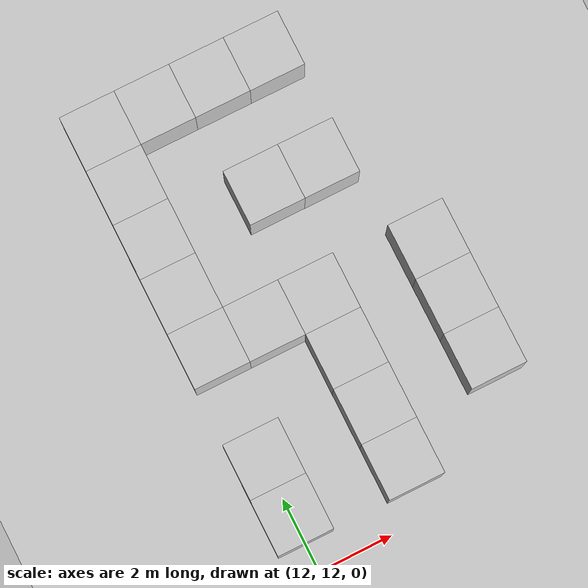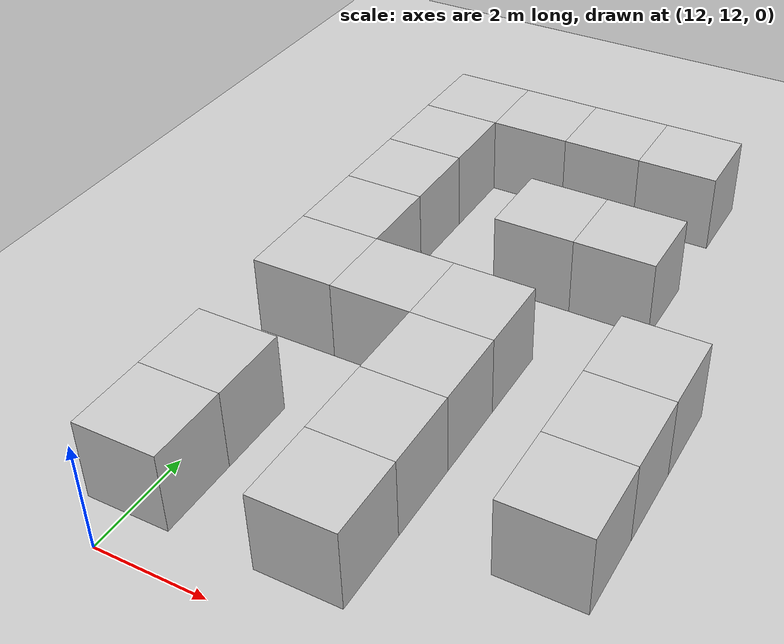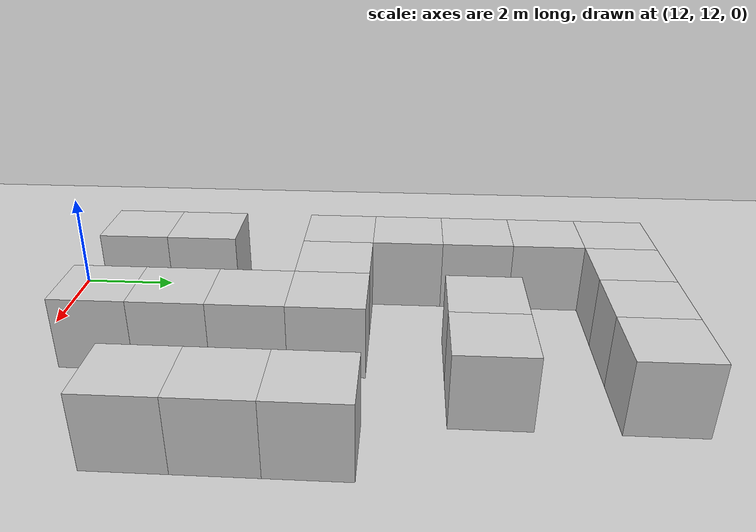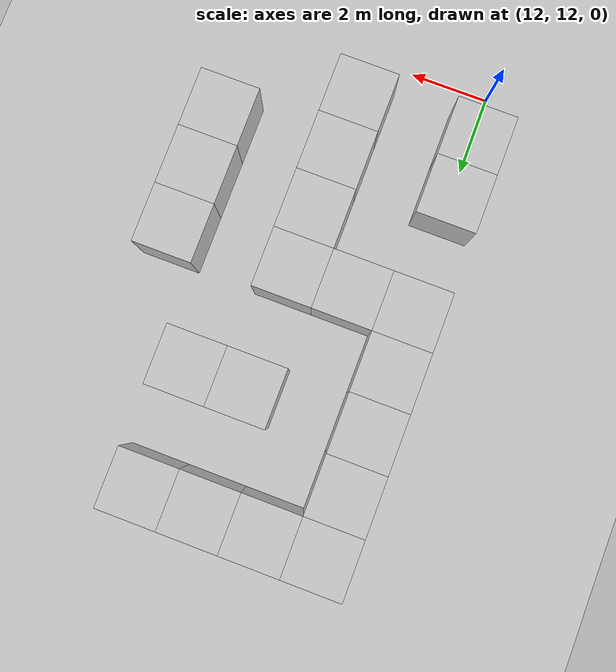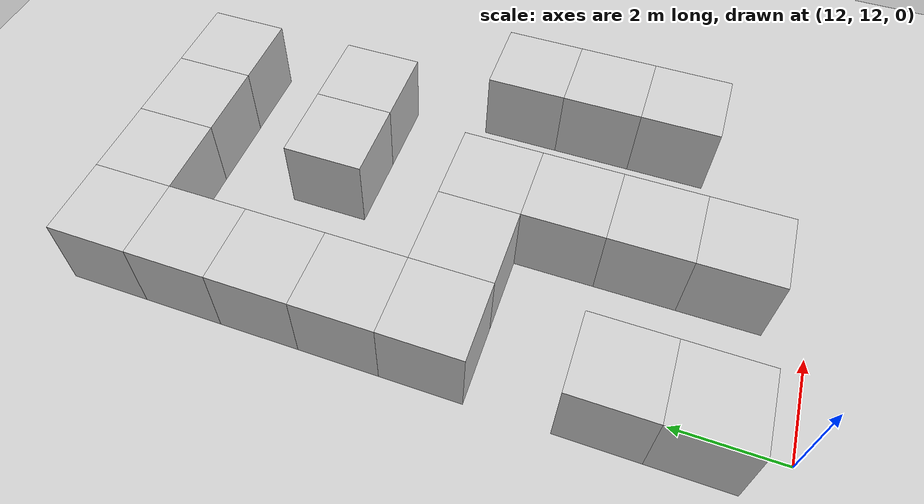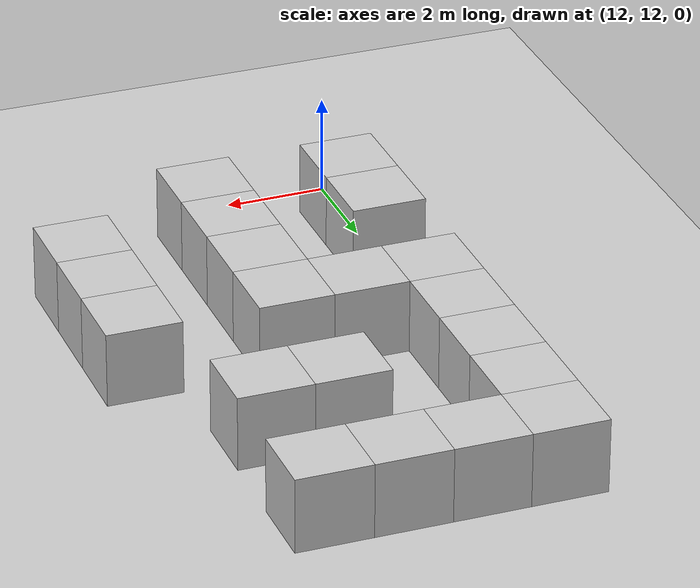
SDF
<sdf version="1.9">
 <world name="maze_world">
  <include><uri>https://fuel.gazebosim.org/1.0/OpenRobotics/models/Sun</uri></include>
  <include><uri>https://fuel.gazebosim.org/1.0/OpenRobotics/models/Ground Plane</uri></include>
  <model name="wall_8_9">
   <static>true</static>
   <pose>12 13.5 0.75 0 0 0</pose>
   <link name="link">
    <collision name="collision"><geometry><box><size>1.5 1.5 1.5</size></box></geometry></collision>
    <visual name="visual">
     <geometry><box><size>1.5 1.5 1.5</size></box></geometry>
     <material>
      <ambient>0.8 0.8 0.8 1</ambient>
      <diffuse>0.8 0.8 0.8 1</diffuse>
      <pbr>
       <metal>
        <albedo_map>file:///home/max/Repos/DHBW-Robotik/maze_runner_ws/src/maze_runner_gazebo/textures/simple_box.png</albedo_map>
        <roughness>0.9</roughness>
       </metal>
      </pbr>
     </material>
    </visual>
   </link>
  </model>
  <model name="wall_10_9">
   <static>true</static>
   <pose>15 13.5 0.75 0 0 0</pose>
   <link name="link">
    <collision name="collision"><geometry><box><size>1.5 1.5 1.5</size></box></geometry></collision>
    <visual name="visual">
     <geometry><box><size>1.5 1.5 1.5</size></box></geometry>
     <material>
      <ambient>0.8 0.8 0.8 1</ambient>
      <diffuse>0.8 0.8 0.8 1</diffuse>
      <pbr>
       <metal>
        <albedo_map>file:///home/max/Repos/DHBW-Robotik/maze_runner_ws/src/maze_runner_gazebo/textures/simple_box.png</albedo_map>
        <roughness>0.9</roughness>
       </metal>
      </pbr>
     </material>
    </visual>
   </link>
  </model>
  <model name="wall_8_10">
   <static>true</static>
   <pose>12 15 0.75 0 0 0</pose>
   <link name="link">
    <collision name="collision"><geometry><box><size>1.5 1.5 1.5</size></box></geometry></collision>
    <visual name="visual">
     <geometry><box><size>1.5 1.5 1.5</size></box></geometry>
     <material>
      <ambient>0.8 0.8 0.8 1</ambient>
      <diffuse>0.8 0.8 0.8 1</diffuse>
      <pbr>
       <metal>
        <albedo_map>file:///home/max/Repos/DHBW-Robotik/maze_runner_ws/src/maze_runner_gazebo/textures/simple_box.png</albedo_map>
        <roughness>0.9</roughness>
       </metal>
      </pbr>
     </material>
    </visual>
   </link>
  </model>
  <model name="wall_10_10">
   <static>true</static>
   <pose>15 15 0.75 0 0 0</pose>
   <link name="link">
    <collision name="collision"><geometry><box><size>1.5 1.5 1.5</size></box></geometry></collision>
    <visual name="visual">
     <geometry><box><size>1.5 1.5 1.5</size></box></geometry>
     <material>
      <ambient>0.8 0.8 0.8 1</ambient>
      <diffuse>0.8 0.8 0.8 1</diffuse>
      <pbr>
       <metal>
        <albedo_map>file:///home/max/Repos/DHBW-Robotik/maze_runner_ws/src/maze_runner_gazebo/textures/simple_box.png</albedo_map>
        <roughness>0.9</roughness>
       </metal>
      </pbr>
     </material>
    </visual>
   </link>
  </model>
  <model name="wall_12_10">
   <static>true</static>
   <pose>18 15 0.75 0 0 0</pose>
   <link name="link">
    <collision name="collision"><geometry><box><size>1.5 1.5 1.5</size></box></geometry></collision>
    <visual name="visual">
     <geometry><box><size>1.5 1.5 1.5</size></box></geometry>
     <material>
      <ambient>0.8 0.8 0.8 1</ambient>
      <diffuse>0.8 0.8 0.8 1</diffuse>
      <pbr>
       <metal>
        <albedo_map>file:///home/max/Repos/DHBW-Robotik/maze_runner_ws/src/maze_runner_gazebo/textures/simple_box.png</albedo_map>
        <roughness>0.9</roughness>
       </metal>
      </pbr>
     </material>
    </visual>
   </link>
  </model>
  <model name="wall_10_11">
   <static>true</static>
   <pose>15 16.5 0.75 0 0 0</pose>
   <link name="link">
    <collision name="collision"><geometry><box><size>1.5 1.5 1.5</size></box></geometry></collision>
    <visual name="visual">
     <geometry><box><size>1.5 1.5 1.5</size></box></geometry>
     <material>
      <ambient>0.8 0.8 0.8 1</ambient>
      <diffuse>0.8 0.8 0.8 1</diffuse>
      <pbr>
       <metal>
        <albedo_map>file:///home/max/Repos/DHBW-Robotik/maze_runner_ws/src/maze_runner_gazebo/textures/simple_box.png</albedo_map>
        <roughness>0.9</roughness>
       </metal>
      </pbr>
     </material>
    </visual>
   </link>
  </model>
  <model name="wall_12_11">
   <static>true</static>
   <pose>18 16.5 0.75 0 0 0</pose>
   <link name="link">
    <collision name="collision"><geometry><box><size>1.5 1.5 1.5</size></box></geometry></collision>
    <visual name="visual">
     <geometry><box><size>1.5 1.5 1.5</size></box></geometry>
     <material>
      <ambient>0.8 0.8 0.8 1</ambient>
      <diffuse>0.8 0.8 0.8 1</diffuse>
      <pbr>
       <metal>
        <albedo_map>file:///home/max/Repos/DHBW-Robotik/maze_runner_ws/src/maze_runner_gazebo/textures/simple_box.png</albedo_map>
        <roughness>0.9</roughness>
       </metal>
      </pbr>
     </material>
    </visual>
   </link>
  </model>
  <model name="wall_8_12">
   <static>true</static>
   <pose>12 18 0.75 0 0 0</pose>
   <link name="link">
    <collision name="collision"><geometry><box><size>1.5 1.5 1.5</size></box></geometry></collision>
    <visual name="visual">
     <geometry><box><size>1.5 1.5 1.5</size></box></geometry>
     <material>
      <ambient>0.8 0.8 0.8 1</ambient>
      <diffuse>0.8 0.8 0.8 1</diffuse>
      <pbr>
       <metal>
        <albedo_map>file:///home/max/Repos/DHBW-Robotik/maze_runner_ws/src/maze_runner_gazebo/textures/simple_box.png</albedo_map>
        <roughness>0.9</roughness>
       </metal>
      </pbr>
     </material>
    </visual>
   </link>
  </model>
  <model name="wall_9_12">
   <static>true</static>
   <pose>13.5 18 0.75 0 0 0</pose>
   <link name="link">
    <collision name="collision"><geometry><box><size>1.5 1.5 1.5</size></box></geometry></collision>
    <visual name="visual">
     <geometry><box><size>1.5 1.5 1.5</size></box></geometry>
     <material>
      <ambient>0.8 0.8 0.8 1</ambient>
      <diffuse>0.8 0.8 0.8 1</diffuse>
      <pbr>
       <metal>
        <albedo_map>file:///home/max/Repos/DHBW-Robotik/maze_runner_ws/src/maze_runner_gazebo/textures/simple_box.png</albedo_map>
        <roughness>0.9</roughness>
       </metal>
      </pbr>
     </material>
    </visual>
   </link>
  </model>
  <model name="wall_10_12">
   <static>true</static>
   <pose>15 18 0.75 0 0 0</pose>
   <link name="link">
    <collision name="collision"><geometry><box><size>1.5 1.5 1.5</size></box></geometry></collision>
    <visual name="visual">
     <geometry><box><size>1.5 1.5 1.5</size></box></geometry>
     <material>
      <ambient>0.8 0.8 0.8 1</ambient>
      <diffuse>0.8 0.8 0.8 1</diffuse>
      <pbr>
       <metal>
        <albedo_map>file:///home/max/Repos/DHBW-Robotik/maze_runner_ws/src/maze_runner_gazebo/textures/simple_box.png</albedo_map>
        <roughness>0.9</roughness>
       </metal>
      </pbr>
     </material>
    </visual>
   </link>
  </model>
  <model name="wall_12_12">
   <static>true</static>
   <pose>18 18 0.75 0 0 0</pose>
   <link name="link">
    <collision name="collision"><geometry><box><size>1.5 1.5 1.5</size></box></geometry></collision>
    <visual name="visual">
     <geometry><box><size>1.5 1.5 1.5</size></box></geometry>
     <material>
      <ambient>0.8 0.8 0.8 1</ambient>
      <diffuse>0.8 0.8 0.8 1</diffuse>
      <pbr>
       <metal>
        <albedo_map>file:///home/max/Repos/DHBW-Robotik/maze_runner_ws/src/maze_runner_gazebo/textures/simple_box.png</albedo_map>
        <roughness>0.9</roughness>
       </metal>
      </pbr>
     </material>
    </visual>
   </link>
  </model>
  <model name="wall_8_13">
   <static>true</static>
   <pose>12 19.5 0.75 0 0 0</pose>
   <link name="link">
    <collision name="collision"><geometry><box><size>1.5 1.5 1.5</size></box></geometry></collision>
    <visual name="visual">
     <geometry><box><size>1.5 1.5 1.5</size></box></geometry>
     <material>
      <ambient>0.8 0.8 0.8 1</ambient>
      <diffuse>0.8 0.8 0.8 1</diffuse>
      <pbr>
       <metal>
        <albedo_map>file:///home/max/Repos/DHBW-Robotik/maze_runner_ws/src/maze_runner_gazebo/textures/simple_box.png</albedo_map>
        <roughness>0.9</roughness>
       </metal>
      </pbr>
     </material>
    </visual>
   </link>
  </model>
  <model name="wall_8_14">
   <static>true</static>
   <pose>12 21 0.75 0 0 0</pose>
   <link name="link">
    <collision name="collision"><geometry><box><size>1.5 1.5 1.5</size></box></geometry></collision>
    <visual name="visual">
     <geometry><box><size>1.5 1.5 1.5</size></box></geometry>
     <material>
      <ambient>0.8 0.8 0.8 1</ambient>
      <diffuse>0.8 0.8 0.8 1</diffuse>
      <pbr>
       <metal>
        <albedo_map>file:///home/max/Repos/DHBW-Robotik/maze_runner_ws/src/maze_runner_gazebo/textures/simple_box.png</albedo_map>
        <roughness>0.9</roughness>
       </metal>
      </pbr>
     </material>
    </visual>
   </link>
  </model>
  <model name="wall_10_14">
   <static>true</static>
   <pose>15 21 0.75 0 0 0</pose>
   <link name="link">
    <collision name="collision"><geometry><box><size>1.5 1.5 1.5</size></box></geometry></collision>
    <visual name="visual">
     <geometry><box><size>1.5 1.5 1.5</size></box></geometry>
     <material>
      <ambient>0.8 0.8 0.8 1</ambient>
      <diffuse>0.8 0.8 0.8 1</diffuse>
      <pbr>
       <metal>
        <albedo_map>file:///home/max/Repos/DHBW-Robotik/maze_runner_ws/src/maze_runner_gazebo/textures/simple_box.png</albedo_map>
        <roughness>0.9</roughness>
       </metal>
      </pbr>
     </material>
    </visual>
   </link>
  </model>
  <model name="wall_11_14">
   <static>true</static>
   <pose>16.5 21 0.75 0 0 0</pose>
   <link name="link">
    <collision name="collision"><geometry><box><size>1.5 1.5 1.5</size></box></geometry></collision>
    <visual name="visual">
     <geometry><box><size>1.5 1.5 1.5</size></box></geometry>
     <material>
      <ambient>0.8 0.8 0.8 1</ambient>
      <diffuse>0.8 0.8 0.8 1</diffuse>
      <pbr>
       <metal>
        <albedo_map>file:///home/max/Repos/DHBW-Robotik/maze_runner_ws/src/maze_runner_gazebo/textures/simple_box.png</albedo_map>
        <roughness>0.9</roughness>
       </metal>
      </pbr>
     </material>
    </visual>
   </link>
  </model>
  <model name="wall_8_15">
   <static>true</static>
   <pose>12 22.5 0.75 0 0 0</pose>
   <link name="link">
    <collision name="collision"><geometry><box><size>1.5 1.5 1.5</size></box></geometry></collision>
    <visual name="visual">
     <geometry><box><size>1.5 1.5 1.5</size></box></geometry>
     <material>
      <ambient>0.8 0.8 0.8 1</ambient>
      <diffuse>0.8 0.8 0.8 1</diffuse>
      <pbr>
       <metal>
        <albedo_map>file:///home/max/Repos/DHBW-Robotik/maze_runner_ws/src/maze_runner_gazebo/textures/simple_box.png</albedo_map>
        <roughness>0.9</roughness>
       </metal>
      </pbr>
     </material>
    </visual>
   </link>
  </model>
  <model name="wall_8_16">
   <static>true</static>
   <pose>12 24 0.75 0 0 0</pose>
   <link name="link">
    <collision name="collision"><geometry><box><size>1.5 1.5 1.5</size></box></geometry></collision>
    <visual name="visual">
     <geometry><box><size>1.5 1.5 1.5</size></box></geometry>
     <material>
      <ambient>0.8 0.8 0.8 1</ambient>
      <diffuse>0.8 0.8 0.8 1</diffuse>
      <pbr>
       <metal>
        <albedo_map>file:///home/max/Repos/DHBW-Robotik/maze_runner_ws/src/maze_runner_gazebo/textures/simple_box.png</albedo_map>
        <roughness>0.9</roughness>
       </metal>
      </pbr>
     </material>
    </visual>
   </link>
  </model>
  <model name="wall_9_16">
   <static>true</static>
   <pose>13.5 24 0.75 0 0 0</pose>
   <link name="link">
    <collision name="collision"><geometry><box><size>1.5 1.5 1.5</size></box></geometry></collision>
    <visual name="visual">
     <geometry><box><size>1.5 1.5 1.5</size></box></geometry>
     <material>
      <ambient>0.8 0.8 0.8 1</ambient>
      <diffuse>0.8 0.8 0.8 1</diffuse>
      <pbr>
       <metal>
        <albedo_map>file:///home/max/Repos/DHBW-Robotik/maze_runner_ws/src/maze_runner_gazebo/textures/simple_box.png</albedo_map>
        <roughness>0.9</roughness>
       </metal>
      </pbr>
     </material>
    </visual>
   </link>
  </model>
  <model name="wall_10_16">
   <static>true</static>
   <pose>15 24 0.75 0 0 0</pose>
   <link name="link">
    <collision name="collision"><geometry><box><size>1.5 1.5 1.5</size></box></geometry></collision>
    <visual name="visual">
     <geometry><box><size>1.5 1.5 1.5</size></box></geometry>
     <material>
      <ambient>0.8 0.8 0.8 1</ambient>
      <diffuse>0.8 0.8 0.8 1</diffuse>
      <pbr>
       <metal>
        <albedo_map>file:///home/max/Repos/DHBW-Robotik/maze_runner_ws/src/maze_runner_gazebo/textures/simple_box.png</albedo_map>
        <roughness>0.9</roughness>
       </metal>
      </pbr>
     </material>
    </visual>
   </link>
  </model>
  <model name="wall_11_16">
   <static>true</static>
   <pose>16.5 24 0.75 0 0 0</pose>
   <link name="link">
    <collision name="collision"><geometry><box><size>1.5 1.5 1.5</size></box></geometry></collision>
    <visual name="visual">
     <geometry><box><size>1.5 1.5 1.5</size></box></geometry>
     <material>
      <ambient>0.8 0.8 0.8 1</ambient>
      <diffuse>0.8 0.8 0.8 1</diffuse>
      <pbr>
       <metal>
        <albedo_map>file:///home/max/Repos/DHBW-Robotik/maze_runner_ws/src/maze_runner_gazebo/textures/simple_box.png</albedo_map>
        <roughness>0.9</roughness>
       </metal>
      </pbr>
     </material>
    </visual>
   </link>
  </model>
 </world>
</sdf>
